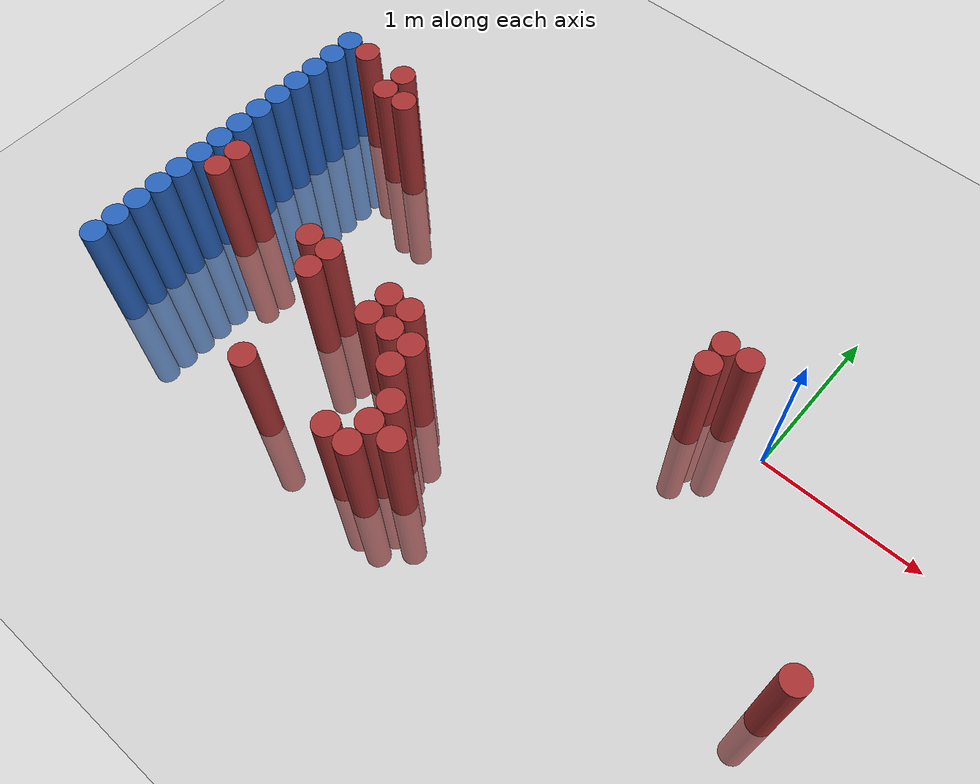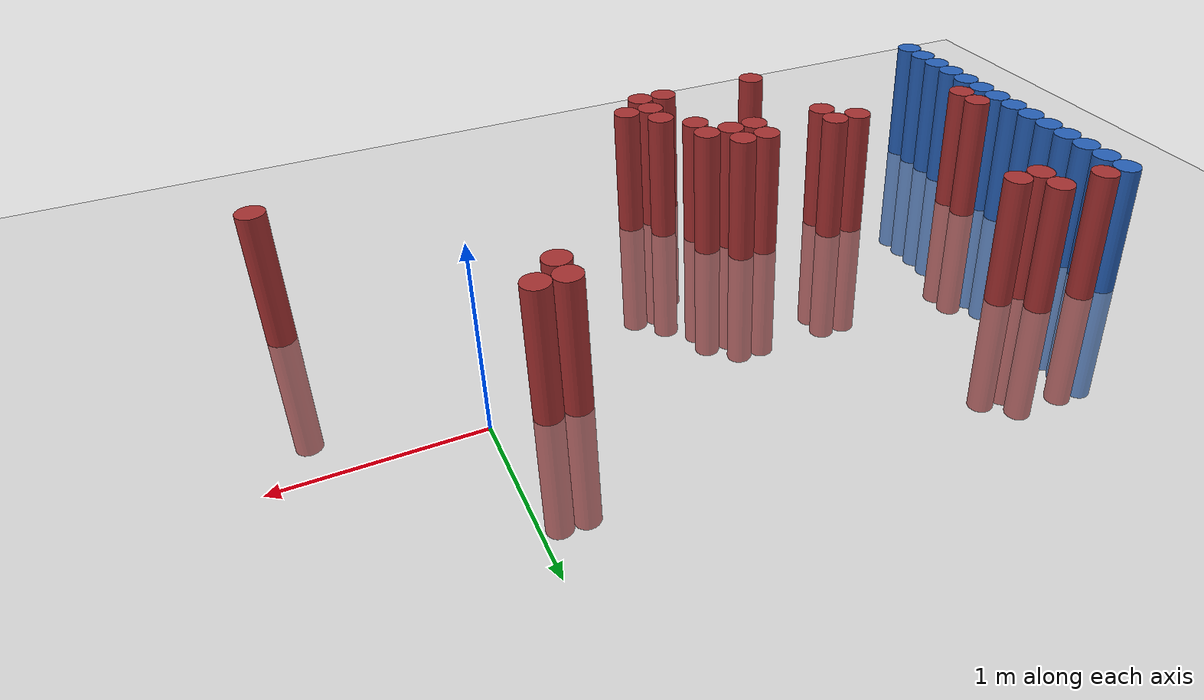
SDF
<sdf version="1.6">
 <world name="default">
  <model name="ground_plane">
   <static>1</static>
   <link name="link">
    <collision name="collision">
     <geometry><plane><normal>0 0 1</normal><size>100 100</size></plane></geometry>
     <surface><friction><ode><mu>100</mu><mu2>50</mu2></ode></friction></surface>
    </collision>
    <visual name="visual">
     <cast_shadows>0</cast_shadows>
     <geometry><plane><normal>0 0 1</normal><size>100 100</size></plane></geometry>
     <material>
      <script><uri>file://media/materials/scripts/gazebo.material</uri><name>Gazebo/Grey</name></script>
     </material>
    </visual>
   </link>
  </model>
  <model name="unit_cylinder_93">
   <static>1</static>
   <pose>-3.425000 -1.625000 0.000000 0.000000 0.000000 0.000000</pose>
   <link name="link">
    <inertial>
     <mass>1</mass>
     <inertia><ixx>0.145833</ixx><ixy>0</ixy><ixz>0</ixz><iyy>0.145833</iyy><iyz>0</iyz><izz>0.125</izz></inertia>
    </inertial>
    <collision name="collision">
     <geometry><cylinder><radius>0.075000</radius><length>1.5</length></cylinder></geometry>
    </collision>
    <visual name="visual">
     <geometry><cylinder><radius>0.075000</radius><length>1.5</length></cylinder></geometry>
     <material>
      <ambient>0.152000 0.379000 0.720000 1</ambient>
      <diffuse>0.152000 0.379000 0.720000 1</diffuse>
     </material>
     <material>
      <script><name>Gazebo/Grey</name><uri>file://media/materials/scripts/gazebo.material</uri></script>
     </material>
    </visual>
   </link>
  </model>
  <model name="unit_cylinder_95">
   <static>1</static>
   <pose>-3.425000 -1.475000 0.000000 0.000000 0.000000 0.000000</pose>
   <link name="link">
    <inertial>
     <mass>1</mass>
     <inertia><ixx>0.145833</ixx><ixy>0</ixy><ixz>0</ixz><iyy>0.145833</iyy><iyz>0</iyz><izz>0.125</izz></inertia>
    </inertial>
    <collision name="collision">
     <geometry><cylinder><radius>0.075000</radius><length>1.5</length></cylinder></geometry>
    </collision>
    <visual name="visual">
     <geometry><cylinder><radius>0.075000</radius><length>1.5</length></cylinder></geometry>
     <material>
      <ambient>0.152000 0.379000 0.720000 1</ambient>
      <diffuse>0.152000 0.379000 0.720000 1</diffuse>
     </material>
     <material>
      <script><name>Gazebo/Grey</name><uri>file://media/materials/scripts/gazebo.material</uri></script>
     </material>
    </visual>
   </link>
  </model>
  <model name="unit_cylinder_97">
   <static>1</static>
   <pose>-3.425000 -1.325000 0.000000 0.000000 0.000000 0.000000</pose>
   <link name="link">
    <inertial>
     <mass>1</mass>
     <inertia><ixx>0.145833</ixx><ixy>0</ixy><ixz>0</ixz><iyy>0.145833</iyy><iyz>0</iyz><izz>0.125</izz></inertia>
    </inertial>
    <collision name="collision">
     <geometry><cylinder><radius>0.075000</radius><length>1.5</length></cylinder></geometry>
    </collision>
    <visual name="visual">
     <geometry><cylinder><radius>0.075000</radius><length>1.5</length></cylinder></geometry>
     <material>
      <ambient>0.152000 0.379000 0.720000 1</ambient>
      <diffuse>0.152000 0.379000 0.720000 1</diffuse>
     </material>
     <material>
      <script><name>Gazebo/Grey</name><uri>file://media/materials/scripts/gazebo.material</uri></script>
     </material>
    </visual>
   </link>
  </model>
  <model name="unit_cylinder_99">
   <static>1</static>
   <pose>-3.425000 -1.175000 0.000000 0.000000 0.000000 0.000000</pose>
   <link name="link">
    <inertial>
     <mass>1</mass>
     <inertia><ixx>0.145833</ixx><ixy>0</ixy><ixz>0</ixz><iyy>0.145833</iyy><iyz>0</iyz><izz>0.125</izz></inertia>
    </inertial>
    <collision name="collision">
     <geometry><cylinder><radius>0.075000</radius><length>1.5</length></cylinder></geometry>
    </collision>
    <visual name="visual">
     <geometry><cylinder><radius>0.075000</radius><length>1.5</length></cylinder></geometry>
     <material>
      <ambient>0.152000 0.379000 0.720000 1</ambient>
      <diffuse>0.152000 0.379000 0.720000 1</diffuse>
     </material>
     <material>
      <script><name>Gazebo/Grey</name><uri>file://media/materials/scripts/gazebo.material</uri></script>
     </material>
    </visual>
   </link>
  </model>
  <model name="unit_cylinder_101">
   <static>1</static>
   <pose>-3.425000 -1.025000 0.000000 0.000000 0.000000 0.000000</pose>
   <link name="link">
    <inertial>
     <mass>1</mass>
     <inertia><ixx>0.145833</ixx><ixy>0</ixy><ixz>0</ixz><iyy>0.145833</iyy><iyz>0</iyz><izz>0.125</izz></inertia>
    </inertial>
    <collision name="collision">
     <geometry><cylinder><radius>0.075000</radius><length>1.5</length></cylinder></geometry>
    </collision>
    <visual name="visual">
     <geometry><cylinder><radius>0.075000</radius><length>1.5</length></cylinder></geometry>
     <material>
      <ambient>0.152000 0.379000 0.720000 1</ambient>
      <diffuse>0.152000 0.379000 0.720000 1</diffuse>
     </material>
     <material>
      <script><name>Gazebo/Grey</name><uri>file://media/materials/scripts/gazebo.material</uri></script>
     </material>
    </visual>
   </link>
  </model>
  <model name="unit_cylinder_103">
   <static>1</static>
   <pose>-3.425000 -0.875000 0.000000 0.000000 0.000000 0.000000</pose>
   <link name="link">
    <inertial>
     <mass>1</mass>
     <inertia><ixx>0.145833</ixx><ixy>0</ixy><ixz>0</ixz><iyy>0.145833</iyy><iyz>0</iyz><izz>0.125</izz></inertia>
    </inertial>
    <collision name="collision">
     <geometry><cylinder><radius>0.075000</radius><length>1.5</length></cylinder></geometry>
    </collision>
    <visual name="visual">
     <geometry><cylinder><radius>0.075000</radius><length>1.5</length></cylinder></geometry>
     <material>
      <ambient>0.152000 0.379000 0.720000 1</ambient>
      <diffuse>0.152000 0.379000 0.720000 1</diffuse>
     </material>
     <material>
      <script><name>Gazebo/Grey</name><uri>file://media/materials/scripts/gazebo.material</uri></script>
     </material>
    </visual>
   </link>
  </model>
  <model name="unit_cylinder_105">
   <static>1</static>
   <pose>-3.425000 -0.725000 0.000000 0.000000 0.000000 0.000000</pose>
   <link name="link">
    <inertial>
     <mass>1</mass>
     <inertia><ixx>0.145833</ixx><ixy>0</ixy><ixz>0</ixz><iyy>0.145833</iyy><iyz>0</iyz><izz>0.125</izz></inertia>
    </inertial>
    <collision name="collision">
     <geometry><cylinder><radius>0.075000</radius><length>1.5</length></cylinder></geometry>
    </collision>
    <visual name="visual">
     <geometry><cylinder><radius>0.075000</radius><length>1.5</length></cylinder></geometry>
     <material>
      <ambient>0.152000 0.379000 0.720000 1</ambient>
      <diffuse>0.152000 0.379000 0.720000 1</diffuse>
     </material>
     <material>
      <script><name>Gazebo/Grey</name><uri>file://media/materials/scripts/gazebo.material</uri></script>
     </material>
    </visual>
   </link>
  </model>
  <model name="unit_cylinder_107">
   <static>1</static>
   <pose>-3.425000 -0.575000 0.000000 0.000000 0.000000 0.000000</pose>
   <link name="link">
    <inertial>
     <mass>1</mass>
     <inertia><ixx>0.145833</ixx><ixy>0</ixy><ixz>0</ixz><iyy>0.145833</iyy><iyz>0</iyz><izz>0.125</izz></inertia>
    </inertial>
    <collision name="collision">
     <geometry><cylinder><radius>0.075000</radius><length>1.5</length></cylinder></geometry>
    </collision>
    <visual name="visual">
     <geometry><cylinder><radius>0.075000</radius><length>1.5</length></cylinder></geometry>
     <material>
      <ambient>0.152000 0.379000 0.720000 1</ambient>
      <diffuse>0.152000 0.379000 0.720000 1</diffuse>
     </material>
     <material>
      <script><name>Gazebo/Grey</name><uri>file://media/materials/scripts/gazebo.material</uri></script>
     </material>
    </visual>
   </link>
  </model>
  <model name="unit_cylinder_109">
   <static>1</static>
   <pose>-3.425000 -0.425000 0.000000 0.000000 0.000000 0.000000</pose>
   <link name="link">
    <inertial>
     <mass>1</mass>
     <inertia><ixx>0.145833</ixx><ixy>0</ixy><ixz>0</ixz><iyy>0.145833</iyy><iyz>0</iyz><izz>0.125</izz></inertia>
    </inertial>
    <collision name="collision">
     <geometry><cylinder><radius>0.075000</radius><length>1.5</length></cylinder></geometry>
    </collision>
    <visual name="visual">
     <geometry><cylinder><radius>0.075000</radius><length>1.5</length></cylinder></geometry>
     <material>
      <ambient>0.152000 0.379000 0.720000 1</ambient>
      <diffuse>0.152000 0.379000 0.720000 1</diffuse>
     </material>
     <material>
      <script><name>Gazebo/Grey</name><uri>file://media/materials/scripts/gazebo.material</uri></script>
     </material>
    </visual>
   </link>
  </model>
  <model name="unit_cylinder_111">
   <static>1</static>
   <pose>-3.425000 -0.275000 0.000000 0.000000 0.000000 0.000000</pose>
   <link name="link">
    <inertial>
     <mass>1</mass>
     <inertia><ixx>0.145833</ixx><ixy>0</ixy><ixz>0</ixz><iyy>0.145833</iyy><iyz>0</iyz><izz>0.125</izz></inertia>
    </inertial>
    <collision name="collision">
     <geometry><cylinder><radius>0.075000</radius><length>1.5</length></cylinder></geometry>
    </collision>
    <visual name="visual">
     <geometry><cylinder><radius>0.075000</radius><length>1.5</length></cylinder></geometry>
     <material>
      <ambient>0.152000 0.379000 0.720000 1</ambient>
      <diffuse>0.152000 0.379000 0.720000 1</diffuse>
     </material>
     <material>
      <script><name>Gazebo/Grey</name><uri>file://media/materials/scripts/gazebo.material</uri></script>
     </material>
    </visual>
   </link>
  </model>
  <model name="unit_cylinder_113">
   <static>1</static>
   <pose>-3.425000 -0.125000 0.000000 0.000000 0.000000 0.000000</pose>
   <link name="link">
    <inertial>
     <mass>1</mass>
     <inertia><ixx>0.145833</ixx><ixy>0</ixy><ixz>0</ixz><iyy>0.145833</iyy><iyz>0</iyz><izz>0.125</izz></inertia>
    </inertial>
    <collision name="collision">
     <geometry><cylinder><radius>0.075000</radius><length>1.5</length></cylinder></geometry>
    </collision>
    <visual name="visual">
     <geometry><cylinder><radius>0.075000</radius><length>1.5</length></cylinder></geometry>
     <material>
      <ambient>0.152000 0.379000 0.720000 1</ambient>
      <diffuse>0.152000 0.379000 0.720000 1</diffuse>
     </material>
     <material>
      <script><name>Gazebo/Grey</name><uri>file://media/materials/scripts/gazebo.material</uri></script>
     </material>
    </visual>
   </link>
  </model>
  <model name="unit_cylinder_115">
   <static>1</static>
   <pose>-3.425000 0.025000 0.000000 0.000000 0.000000 0.000000</pose>
   <link name="link">
    <inertial>
     <mass>1</mass>
     <inertia><ixx>0.145833</ixx><ixy>0</ixy><ixz>0</ixz><iyy>0.145833</iyy><iyz>0</iyz><izz>0.125</izz></inertia>
    </inertial>
    <collision name="collision">
     <geometry><cylinder><radius>0.075000</radius><length>1.5</length></cylinder></geometry>
    </collision>
    <visual name="visual">
     <geometry><cylinder><radius>0.075000</radius><length>1.5</length></cylinder></geometry>
     <material>
      <ambient>0.152000 0.379000 0.720000 1</ambient>
      <diffuse>0.152000 0.379000 0.720000 1</diffuse>
     </material>
     <material>
      <script><name>Gazebo/Grey</name><uri>file://media/materials/scripts/gazebo.material</uri></script>
     </material>
    </visual>
   </link>
  </model>
  <model name="unit_cylinder_117">
   <static>1</static>
   <pose>-3.425000 0.175000 0.000000 0.000000 0.000000 0.000000</pose>
   <link name="link">
    <inertial>
     <mass>1</mass>
     <inertia><ixx>0.145833</ixx><ixy>0</ixy><ixz>0</ixz><iyy>0.145833</iyy><iyz>0</iyz><izz>0.125</izz></inertia>
    </inertial>
    <collision name="collision">
     <geometry><cylinder><radius>0.075000</radius><length>1.5</length></cylinder></geometry>
    </collision>
    <visual name="visual">
     <geometry><cylinder><radius>0.075000</radius><length>1.5</length></cylinder></geometry>
     <material>
      <ambient>0.152000 0.379000 0.720000 1</ambient>
      <diffuse>0.152000 0.379000 0.720000 1</diffuse>
     </material>
     <material>
      <script><name>Gazebo/Grey</name><uri>file://media/materials/scripts/gazebo.material</uri></script>
     </material>
    </visual>
   </link>
  </model>
  <model name="unit_cylinder_119">
   <static>1</static>
   <pose>-3.425000 0.325000 0.000000 0.000000 0.000000 0.000000</pose>
   <link name="link">
    <inertial>
     <mass>1</mass>
     <inertia><ixx>0.145833</ixx><ixy>0</ixy><ixz>0</ixz><iyy>0.145833</iyy><iyz>0</iyz><izz>0.125</izz></inertia>
    </inertial>
    <collision name="collision">
     <geometry><cylinder><radius>0.075000</radius><length>1.5</length></cylinder></geometry>
    </collision>
    <visual name="visual">
     <geometry><cylinder><radius>0.075000</radius><length>1.5</length></cylinder></geometry>
     <material>
      <ambient>0.152000 0.379000 0.720000 1</ambient>
      <diffuse>0.152000 0.379000 0.720000 1</diffuse>
     </material>
     <material>
      <script><name>Gazebo/Grey</name><uri>file://media/materials/scripts/gazebo.material</uri></script>
     </material>
    </visual>
   </link>
  </model>
  <model name="unit_cylinder_210">
   <static>1</static>
   <pose>-3.425000 -1.625000 0.000000 0.000000 0.000000 0.000000</pose>
   <link name="link">
    <inertial>
     <mass>1</mass>
     <inertia><ixx>0.145833</ixx><ixy>0</ixy><ixz>0</ixz><iyy>0.145833</iyy><iyz>0</iyz><izz>0.125</izz></inertia>
    </inertial>
    <collision name="collision">
     <geometry><cylinder><radius>0.075000</radius><length>1.5</length></cylinder></geometry>
    </collision>
    <visual name="visual">
     <geometry><cylinder><radius>0.075000</radius><length>1.5</length></cylinder></geometry>
     <material>
      <ambient>0.152000 0.379000 0.720000 1</ambient>
      <diffuse>0.152000 0.379000 0.720000 1</diffuse>
     </material>
     <material>
      <script><name>Gazebo/Grey</name><uri>file://media/materials/scripts/gazebo.material</uri></script>
     </material>
    </visual>
   </link>
  </model>
  <model name="unit_cylinder_211">
   <static>1</static>
   <pose>-3.425000 -1.475000 0.000000 0.000000 0.000000 0.000000</pose>
   <link name="link">
    <inertial>
     <mass>1</mass>
     <inertia><ixx>0.145833</ixx><ixy>0</ixy><ixz>0</ixz><iyy>0.145833</iyy><iyz>0</iyz><izz>0.125</izz></inertia>
    </inertial>
    <collision name="collision">
     <geometry><cylinder><radius>0.075000</radius><length>1.5</length></cylinder></geometry>
    </collision>
    <visual name="visual">
     <geometry><cylinder><radius>0.075000</radius><length>1.5</length></cylinder></geometry>
     <material>
      <ambient>0.152000 0.379000 0.720000 1</ambient>
      <diffuse>0.152000 0.379000 0.720000 1</diffuse>
     </material>
     <material>
      <script><name>Gazebo/Grey</name><uri>file://media/materials/scripts/gazebo.material</uri></script>
     </material>
    </visual>
   </link>
  </model>
  <model name="unit_cylinder_212">
   <static>1</static>
   <pose>-3.425000 -1.325000 0.000000 0.000000 0.000000 0.000000</pose>
   <link name="link">
    <inertial>
     <mass>1</mass>
     <inertia><ixx>0.145833</ixx><ixy>0</ixy><ixz>0</ixz><iyy>0.145833</iyy><iyz>0</iyz><izz>0.125</izz></inertia>
    </inertial>
    <collision name="collision">
     <geometry><cylinder><radius>0.075000</radius><length>1.5</length></cylinder></geometry>
    </collision>
    <visual name="visual">
     <geometry><cylinder><radius>0.075000</radius><length>1.5</length></cylinder></geometry>
     <material>
      <ambient>0.152000 0.379000 0.720000 1</ambient>
      <diffuse>0.152000 0.379000 0.720000 1</diffuse>
     </material>
     <material>
      <script><name>Gazebo/Grey</name><uri>file://media/materials/scripts/gazebo.material</uri></script>
     </material>
    </visual>
   </link>
  </model>
  <model name="unit_cylinder_213">
   <static>1</static>
   <pose>-3.425000 -1.175000 0.000000 0.000000 0.000000 0.000000</pose>
   <link name="link">
    <inertial>
     <mass>1</mass>
     <inertia><ixx>0.145833</ixx><ixy>0</ixy><ixz>0</ixz><iyy>0.145833</iyy><iyz>0</iyz><izz>0.125</izz></inertia>
    </inertial>
    <collision name="collision">
     <geometry><cylinder><radius>0.075000</radius><length>1.5</length></cylinder></geometry>
    </collision>
    <visual name="visual">
     <geometry><cylinder><radius>0.075000</radius><length>1.5</length></cylinder></geometry>
     <material>
      <ambient>0.152000 0.379000 0.720000 1</ambient>
      <diffuse>0.152000 0.379000 0.720000 1</diffuse>
     </material>
     <material>
      <script><name>Gazebo/Grey</name><uri>file://media/materials/scripts/gazebo.material</uri></script>
     </material>
    </visual>
   </link>
  </model>
  <model name="unit_cylinder_214">
   <static>1</static>
   <pose>-3.425000 -1.025000 0.000000 0.000000 0.000000 0.000000</pose>
   <link name="link">
    <inertial>
     <mass>1</mass>
     <inertia><ixx>0.145833</ixx><ixy>0</ixy><ixz>0</ixz><iyy>0.145833</iyy><iyz>0</iyz><izz>0.125</izz></inertia>
    </inertial>
    <collision name="collision">
     <geometry><cylinder><radius>0.075000</radius><length>1.5</length></cylinder></geometry>
    </collision>
    <visual name="visual">
     <geometry><cylinder><radius>0.075000</radius><length>1.5</length></cylinder></geometry>
     <material>
      <ambient>0.152000 0.379000 0.720000 1</ambient>
      <diffuse>0.152000 0.379000 0.720000 1</diffuse>
     </material>
     <material>
      <script><name>Gazebo/Grey</name><uri>file://media/materials/scripts/gazebo.material</uri></script>
     </material>
    </visual>
   </link>
  </model>
  <model name="unit_cylinder_215">
   <static>1</static>
   <pose>-3.425000 -0.875000 0.000000 0.000000 0.000000 0.000000</pose>
   <link name="link">
    <inertial>
     <mass>1</mass>
     <inertia><ixx>0.145833</ixx><ixy>0</ixy><ixz>0</ixz><iyy>0.145833</iyy><iyz>0</iyz><izz>0.125</izz></inertia>
    </inertial>
    <collision name="collision">
     <geometry><cylinder><radius>0.075000</radius><length>1.5</length></cylinder></geometry>
    </collision>
    <visual name="visual">
     <geometry><cylinder><radius>0.075000</radius><length>1.5</length></cylinder></geometry>
     <material>
      <ambient>0.152000 0.379000 0.720000 1</ambient>
      <diffuse>0.152000 0.379000 0.720000 1</diffuse>
     </material>
     <material>
      <script><name>Gazebo/Grey</name><uri>file://media/materials/scripts/gazebo.material</uri></script>
     </material>
    </visual>
   </link>
  </model>
  <model name="unit_cylinder_216">
   <static>1</static>
   <pose>-3.425000 -0.725000 0.000000 0.000000 0.000000 0.000000</pose>
   <link name="link">
    <inertial>
     <mass>1</mass>
     <inertia><ixx>0.145833</ixx><ixy>0</ixy><ixz>0</ixz><iyy>0.145833</iyy><iyz>0</iyz><izz>0.125</izz></inertia>
    </inertial>
    <collision name="collision">
     <geometry><cylinder><radius>0.075000</radius><length>1.5</length></cylinder></geometry>
    </collision>
    <visual name="visual">
     <geometry><cylinder><radius>0.075000</radius><length>1.5</length></cylinder></geometry>
     <material>
      <ambient>0.152000 0.379000 0.720000 1</ambient>
      <diffuse>0.152000 0.379000 0.720000 1</diffuse>
     </material>
     <material>
      <script><name>Gazebo/Grey</name><uri>file://media/materials/scripts/gazebo.material</uri></script>
     </material>
    </visual>
   </link>
  </model>
  <model name="unit_cylinder_217">
   <static>1</static>
   <pose>-3.425000 -0.575000 0.000000 0.000000 0.000000 0.000000</pose>
   <link name="link">
    <inertial>
     <mass>1</mass>
     <inertia><ixx>0.145833</ixx><ixy>0</ixy><ixz>0</ixz><iyy>0.145833</iyy><iyz>0</iyz><izz>0.125</izz></inertia>
    </inertial>
    <collision name="collision">
     <geometry><cylinder><radius>0.075000</radius><length>1.5</length></cylinder></geometry>
    </collision>
    <visual name="visual">
     <geometry><cylinder><radius>0.075000</radius><length>1.5</length></cylinder></geometry>
     <material>
      <ambient>0.152000 0.379000 0.720000 1</ambient>
      <diffuse>0.152000 0.379000 0.720000 1</diffuse>
     </material>
     <material>
      <script><name>Gazebo/Grey</name><uri>file://media/materials/scripts/gazebo.material</uri></script>
     </material>
    </visual>
   </link>
  </model>
  <model name="unit_cylinder_218">
   <static>1</static>
   <pose>-3.425000 -0.425000 0.000000 0.000000 0.000000 0.000000</pose>
   <link name="link">
    <inertial>
     <mass>1</mass>
     <inertia><ixx>0.145833</ixx><ixy>0</ixy><ixz>0</ixz><iyy>0.145833</iyy><iyz>0</iyz><izz>0.125</izz></inertia>
    </inertial>
    <collision name="collision">
     <geometry><cylinder><radius>0.075000</radius><length>1.5</length></cylinder></geometry>
    </collision>
    <visual name="visual">
     <geometry><cylinder><radius>0.075000</radius><length>1.5</length></cylinder></geometry>
     <material>
      <ambient>0.152000 0.379000 0.720000 1</ambient>
      <diffuse>0.152000 0.379000 0.720000 1</diffuse>
     </material>
     <material>
      <script><name>Gazebo/Grey</name><uri>file://media/materials/scripts/gazebo.material</uri></script>
     </material>
    </visual>
   </link>
  </model>
  <model name="unit_cylinder_219">
   <static>1</static>
   <pose>-3.425000 -0.275000 0.000000 0.000000 0.000000 0.000000</pose>
   <link name="link">
    <inertial>
     <mass>1</mass>
     <inertia><ixx>0.145833</ixx><ixy>0</ixy><ixz>0</ixz><iyy>0.145833</iyy><iyz>0</iyz><izz>0.125</izz></inertia>
    </inertial>
    <collision name="collision">
     <geometry><cylinder><radius>0.075000</radius><length>1.5</length></cylinder></geometry>
    </collision>
    <visual name="visual">
     <geometry><cylinder><radius>0.075000</radius><length>1.5</length></cylinder></geometry>
     <material>
      <ambient>0.152000 0.379000 0.720000 1</ambient>
      <diffuse>0.152000 0.379000 0.720000 1</diffuse>
     </material>
     <material>
      <script><name>Gazebo/Grey</name><uri>file://media/materials/scripts/gazebo.material</uri></script>
     </material>
    </visual>
   </link>
  </model>
  <model name="unit_cylinder_220">
   <static>1</static>
   <pose>-3.425000 -0.125000 0.000000 0.000000 0.000000 0.000000</pose>
   <link name="link">
    <inertial>
     <mass>1</mass>
     <inertia><ixx>0.145833</ixx><ixy>0</ixy><ixz>0</ixz><iyy>0.145833</iyy><iyz>0</iyz><izz>0.125</izz></inertia>
    </inertial>
    <collision name="collision">
     <geometry><cylinder><radius>0.075000</radius><length>1.5</length></cylinder></geometry>
    </collision>
    <visual name="visual">
     <geometry><cylinder><radius>0.075000</radius><length>1.5</length></cylinder></geometry>
     <material>
      <ambient>0.152000 0.379000 0.720000 1</ambient>
      <diffuse>0.152000 0.379000 0.720000 1</diffuse>
     </material>
     <material>
      <script><name>Gazebo/Grey</name><uri>file://media/materials/scripts/gazebo.material</uri></script>
     </material>
    </visual>
   </link>
  </model>
  <model name="unit_cylinder_221">
   <static>1</static>
   <pose>-3.425000 0.025000 0.000000 0.000000 0.000000 0.000000</pose>
   <link name="link">
    <inertial>
     <mass>1</mass>
     <inertia><ixx>0.145833</ixx><ixy>0</ixy><ixz>0</ixz><iyy>0.145833</iyy><iyz>0</iyz><izz>0.125</izz></inertia>
    </inertial>
    <collision name="collision">
     <geometry><cylinder><radius>0.075000</radius><length>1.5</length></cylinder></geometry>
    </collision>
    <visual name="visual">
     <geometry><cylinder><radius>0.075000</radius><length>1.5</length></cylinder></geometry>
     <material>
      <ambient>0.152000 0.379000 0.720000 1</ambient>
      <diffuse>0.152000 0.379000 0.720000 1</diffuse>
     </material>
     <material>
      <script><name>Gazebo/Grey</name><uri>file://media/materials/scripts/gazebo.material</uri></script>
     </material>
    </visual>
   </link>
  </model>
  <model name="unit_cylinder_222">
   <static>1</static>
   <pose>-3.425000 0.175000 0.000000 0.000000 0.000000 0.000000</pose>
   <link name="link">
    <inertial>
     <mass>1</mass>
     <inertia><ixx>0.145833</ixx><ixy>0</ixy><ixz>0</ixz><iyy>0.145833</iyy><iyz>0</iyz><izz>0.125</izz></inertia>
    </inertial>
    <collision name="collision">
     <geometry><cylinder><radius>0.075000</radius><length>1.5</length></cylinder></geometry>
    </collision>
    <visual name="visual">
     <geometry><cylinder><radius>0.075000</radius><length>1.5</length></cylinder></geometry>
     <material>
      <ambient>0.152000 0.379000 0.720000 1</ambient>
      <diffuse>0.152000 0.379000 0.720000 1</diffuse>
     </material>
     <material>
      <script><name>Gazebo/Grey</name><uri>file://media/materials/scripts/gazebo.material</uri></script>
     </material>
    </visual>
   </link>
  </model>
  <model name="unit_cylinder_223">
   <static>1</static>
   <pose>-3.425000 0.325000 0.000000 0.000000 0.000000 0.000000</pose>
   <link name="link">
    <inertial>
     <mass>1</mass>
     <inertia><ixx>0.145833</ixx><ixy>0</ixy><ixz>0</ixz><iyy>0.145833</iyy><iyz>0</iyz><izz>0.125</izz></inertia>
    </inertial>
    <collision name="collision">
     <geometry><cylinder><radius>0.075000</radius><length>1.5</length></cylinder></geometry>
    </collision>
    <visual name="visual">
     <geometry><cylinder><radius>0.075000</radius><length>1.5</length></cylinder></geometry>
     <material>
      <ambient>0.152000 0.379000 0.720000 1</ambient>
      <diffuse>0.152000 0.379000 0.720000 1</diffuse>
     </material>
     <material>
      <script><name>Gazebo/Grey</name><uri>file://media/materials/scripts/gazebo.material</uri></script>
     </material>
    </visual>
   </link>
  </model>
  <model name="unit_cylinder_258">
   <static>1</static>
   <pose>-3.275000 -0.875000 0.000000 0.000000 0.000000 0.000000</pose>
   <link name="link">
    <inertial>
     <mass>1</mass>
     <inertia><ixx>0.145833</ixx><ixy>0</ixy><ixz>0</ixz><iyy>0.145833</iyy><iyz>0</iyz><izz>0.125</izz></inertia>
    </inertial>
    <collision name="collision">
     <geometry><cylinder><radius>0.075000</radius><length>1.5</length></cylinder></geometry>
    </collision>
    <visual name="visual">
     <geometry><cylinder><radius>0.075000</radius><length>1.5</length></cylinder></geometry>
     <material>
      <ambient>0.648000 0.192000 0.192000 1</ambient>
      <diffuse>0.648000 0.192000 0.192000 1</diffuse>
     </material>
     <material>
      <script><name>Gazebo/Grey</name><uri>file://media/materials/scripts/gazebo.material</uri></script>
     </material>
    </visual>
   </link>
  </model>
  <model name="unit_cylinder_259">
   <static>1</static>
   <pose>-3.275000 -0.725000 0.000000 0.000000 0.000000 0.000000</pose>
   <link name="link">
    <inertial>
     <mass>1</mass>
     <inertia><ixx>0.145833</ixx><ixy>0</ixy><ixz>0</ixz><iyy>0.145833</iyy><iyz>0</iyz><izz>0.125</izz></inertia>
    </inertial>
    <collision name="collision">
     <geometry><cylinder><radius>0.075000</radius><length>1.5</length></cylinder></geometry>
    </collision>
    <visual name="visual">
     <geometry><cylinder><radius>0.075000</radius><length>1.5</length></cylinder></geometry>
     <material>
      <ambient>0.648000 0.192000 0.192000 1</ambient>
      <diffuse>0.648000 0.192000 0.192000 1</diffuse>
     </material>
     <material>
      <script><name>Gazebo/Grey</name><uri>file://media/materials/scripts/gazebo.material</uri></script>
     </material>
    </visual>
   </link>
  </model>
  <model name="unit_cylinder_260">
   <static>1</static>
   <pose>-3.275000 0.325000 0.000000 0.000000 0.000000 0.000000</pose>
   <link name="link">
    <inertial>
     <mass>1</mass>
     <inertia><ixx>0.145833</ixx><ixy>0</ixy><ixz>0</ixz><iyy>0.145833</iyy><iyz>0</iyz><izz>0.125</izz></inertia>
    </inertial>
    <collision name="collision">
     <geometry><cylinder><radius>0.075000</radius><length>1.5</length></cylinder></geometry>
    </collision>
    <visual name="visual">
     <geometry><cylinder><radius>0.075000</radius><length>1.5</length></cylinder></geometry>
     <material>
      <ambient>0.648000 0.192000 0.192000 1</ambient>
      <diffuse>0.648000 0.192000 0.192000 1</diffuse>
     </material>
     <material>
      <script><name>Gazebo/Grey</name><uri>file://media/materials/scripts/gazebo.material</uri></script>
     </material>
    </visual>
   </link>
  </model>
  <model name="unit_cylinder_278">
   <static>1</static>
   <pose>-2.975000 0.175000 0.000000 0.000000 0.000000 0.000000</pose>
   <link name="link">
    <inertial>
     <mass>1</mass>
     <inertia><ixx>0.145833</ixx><ixy>0</ixy><ixz>0</ixz><iyy>0.145833</iyy><iyz>0</iyz><izz>0.125</izz></inertia>
    </inertial>
    <collision name="collision">
     <geometry><cylinder><radius>0.075000</radius><length>1.5</length></cylinder></geometry>
    </collision>
    <visual name="visual">
     <geometry><cylinder><radius>0.075000</radius><length>1.5</length></cylinder></geometry>
     <material>
      <ambient>0.648000 0.192000 0.192000 1</ambient>
      <diffuse>0.648000 0.192000 0.192000 1</diffuse>
     </material>
     <material>
      <script><name>Gazebo/Grey</name><uri>file://media/materials/scripts/gazebo.material</uri></script>
     </material>
    </visual>
   </link>
  </model>
  <model name="unit_cylinder_279">
   <static>1</static>
   <pose>-2.975000 0.325000 0.000000 0.000000 0.000000 0.000000</pose>
   <link name="link">
    <inertial>
     <mass>1</mass>
     <inertia><ixx>0.145833</ixx><ixy>0</ixy><ixz>0</ixz><iyy>0.145833</iyy><iyz>0</iyz><izz>0.125</izz></inertia>
    </inertial>
    <collision name="collision">
     <geometry><cylinder><radius>0.075000</radius><length>1.5</length></cylinder></geometry>
    </collision>
    <visual name="visual">
     <geometry><cylinder><radius>0.075000</radius><length>1.5</length></cylinder></geometry>
     <material>
      <ambient>0.648000 0.192000 0.192000 1</ambient>
      <diffuse>0.648000 0.192000 0.192000 1</diffuse>
     </material>
     <material>
      <script><name>Gazebo/Grey</name><uri>file://media/materials/scripts/gazebo.material</uri></script>
     </material>
    </visual>
   </link>
  </model>
  <model name="unit_cylinder_280">
   <static>1</static>
   <pose>-2.825000 0.175000 0.000000 0.000000 0.000000 0.000000</pose>
   <link name="link">
    <inertial>
     <mass>1</mass>
     <inertia><ixx>0.145833</ixx><ixy>0</ixy><ixz>0</ixz><iyy>0.145833</iyy><iyz>0</iyz><izz>0.125</izz></inertia>
    </inertial>
    <collision name="collision">
     <geometry><cylinder><radius>0.075000</radius><length>1.5</length></cylinder></geometry>
    </collision>
    <visual name="visual">
     <geometry><cylinder><radius>0.075000</radius><length>1.5</length></cylinder></geometry>
     <material>
      <ambient>0.648000 0.192000 0.192000 1</ambient>
      <diffuse>0.648000 0.192000 0.192000 1</diffuse>
     </material>
     <material>
      <script><name>Gazebo/Grey</name><uri>file://media/materials/scripts/gazebo.material</uri></script>
     </material>
    </visual>
   </link>
  </model>
  <model name="unit_cylinder_281">
   <static>1</static>
   <pose>-2.525000 -0.875000 0.000000 0.000000 0.000000 0.000000</pose>
   <link name="link">
    <inertial>
     <mass>1</mass>
     <inertia><ixx>0.145833</ixx><ixy>0</ixy><ixz>0</ixz><iyy>0.145833</iyy><iyz>0</iyz><izz>0.125</izz></inertia>
    </inertial>
    <collision name="collision">
     <geometry><cylinder><radius>0.075000</radius><length>1.5</length></cylinder></geometry>
    </collision>
    <visual name="visual">
     <geometry><cylinder><radius>0.075000</radius><length>1.5</length></cylinder></geometry>
     <material>
      <ambient>0.648000 0.192000 0.192000 1</ambient>
      <diffuse>0.648000 0.192000 0.192000 1</diffuse>
     </material>
     <material>
      <script><name>Gazebo/Grey</name><uri>file://media/materials/scripts/gazebo.material</uri></script>
     </material>
    </visual>
   </link>
  </model>
  <model name="unit_cylinder_282">
   <static>1</static>
   <pose>-2.375000 -1.025000 0.000000 0.000000 0.000000 0.000000</pose>
   <link name="link">
    <inertial>
     <mass>1</mass>
     <inertia><ixx>0.145833</ixx><ixy>0</ixy><ixz>0</ixz><iyy>0.145833</iyy><iyz>0</iyz><izz>0.125</izz></inertia>
    </inertial>
    <collision name="collision">
     <geometry><cylinder><radius>0.075000</radius><length>1.5</length></cylinder></geometry>
    </collision>
    <visual name="visual">
     <geometry><cylinder><radius>0.075000</radius><length>1.5</length></cylinder></geometry>
     <material>
      <ambient>0.648000 0.192000 0.192000 1</ambient>
      <diffuse>0.648000 0.192000 0.192000 1</diffuse>
     </material>
     <material>
      <script><name>Gazebo/Grey</name><uri>file://media/materials/scripts/gazebo.material</uri></script>
     </material>
    </visual>
   </link>
  </model>
  <model name="unit_cylinder_283">
   <static>1</static>
   <pose>-2.375000 -0.875000 0.000000 0.000000 0.000000 0.000000</pose>
   <link name="link">
    <inertial>
     <mass>1</mass>
     <inertia><ixx>0.145833</ixx><ixy>0</ixy><ixz>0</ixz><iyy>0.145833</iyy><iyz>0</iyz><izz>0.125</izz></inertia>
    </inertial>
    <collision name="collision">
     <geometry><cylinder><radius>0.075000</radius><length>1.5</length></cylinder></geometry>
    </collision>
    <visual name="visual">
     <geometry><cylinder><radius>0.075000</radius><length>1.5</length></cylinder></geometry>
     <material>
      <ambient>0.648000 0.192000 0.192000 1</ambient>
      <diffuse>0.648000 0.192000 0.192000 1</diffuse>
     </material>
     <material>
      <script><name>Gazebo/Grey</name><uri>file://media/materials/scripts/gazebo.material</uri></script>
     </material>
    </visual>
   </link>
  </model>
  <model name="unit_cylinder_284">
   <static>1</static>
   <pose>-2.225000 -1.625000 0.000000 0.000000 0.000000 0.000000</pose>
   <link name="link">
    <inertial>
     <mass>1</mass>
     <inertia><ixx>0.145833</ixx><ixy>0</ixy><ixz>0</ixz><iyy>0.145833</iyy><iyz>0</iyz><izz>0.125</izz></inertia>
    </inertial>
    <collision name="collision">
     <geometry><cylinder><radius>0.075000</radius><length>1.5</length></cylinder></geometry>
    </collision>
    <visual name="visual">
     <geometry><cylinder><radius>0.075000</radius><length>1.5</length></cylinder></geometry>
     <material>
      <ambient>0.648000 0.192000 0.192000 1</ambient>
      <diffuse>0.648000 0.192000 0.192000 1</diffuse>
     </material>
     <material>
      <script><name>Gazebo/Grey</name><uri>file://media/materials/scripts/gazebo.material</uri></script>
     </material>
    </visual>
   </link>
  </model>
  <model name="unit_cylinder_285">
   <static>1</static>
   <pose>-1.925000 -1.025000 0.000000 0.000000 0.000000 0.000000</pose>
   <link name="link">
    <inertial>
     <mass>1</mass>
     <inertia><ixx>0.145833</ixx><ixy>0</ixy><ixz>0</ixz><iyy>0.145833</iyy><iyz>0</iyz><izz>0.125</izz></inertia>
    </inertial>
    <collision name="collision">
     <geometry><cylinder><radius>0.075000</radius><length>1.5</length></cylinder></geometry>
    </collision>
    <visual name="visual">
     <geometry><cylinder><radius>0.075000</radius><length>1.5</length></cylinder></geometry>
     <material>
      <ambient>0.648000 0.192000 0.192000 1</ambient>
      <diffuse>0.648000 0.192000 0.192000 1</diffuse>
     </material>
     <material>
      <script><name>Gazebo/Grey</name><uri>file://media/materials/scripts/gazebo.material</uri></script>
     </material>
    </visual>
   </link>
  </model>
  <model name="unit_cylinder_286">
   <static>1</static>
   <pose>-1.925000 -0.875000 0.000000 0.000000 0.000000 0.000000</pose>
   <link name="link">
    <inertial>
     <mass>1</mass>
     <inertia><ixx>0.145833</ixx><ixy>0</ixy><ixz>0</ixz><iyy>0.145833</iyy><iyz>0</iyz><izz>0.125</izz></inertia>
    </inertial>
    <collision name="collision">
     <geometry><cylinder><radius>0.075000</radius><length>1.5</length></cylinder></geometry>
    </collision>
    <visual name="visual">
     <geometry><cylinder><radius>0.075000</radius><length>1.5</length></cylinder></geometry>
     <material>
      <ambient>0.648000 0.192000 0.192000 1</ambient>
      <diffuse>0.648000 0.192000 0.192000 1</diffuse>
     </material>
     <material>
      <script><name>Gazebo/Grey</name><uri>file://media/materials/scripts/gazebo.material</uri></script>
     </material>
    </visual>
   </link>
  </model>
  <model name="unit_cylinder_287">
   <static>1</static>
   <pose>-1.775000 -1.025000 0.000000 0.000000 0.000000 0.000000</pose>
   <link name="link">
    <inertial>
     <mass>1</mass>
     <inertia><ixx>0.145833</ixx><ixy>0</ixy><ixz>0</ixz><iyy>0.145833</iyy><iyz>0</iyz><izz>0.125</izz></inertia>
    </inertial>
    <collision name="collision">
     <geometry><cylinder><radius>0.075000</radius><length>1.5</length></cylinder></geometry>
    </collision>
    <visual name="visual">
     <geometry><cylinder><radius>0.075000</radius><length>1.5</length></cylinder></geometry>
     <material>
      <ambient>0.648000 0.192000 0.192000 1</ambient>
      <diffuse>0.648000 0.192000 0.192000 1</diffuse>
     </material>
     <material>
      <script><name>Gazebo/Grey</name><uri>file://media/materials/scripts/gazebo.material</uri></script>
     </material>
    </visual>
   </link>
  </model>
  <model name="unit_cylinder_288">
   <static>1</static>
   <pose>-1.775000 -0.875000 0.000000 0.000000 0.000000 0.000000</pose>
   <link name="link">
    <inertial>
     <mass>1</mass>
     <inertia><ixx>0.145833</ixx><ixy>0</ixy><ixz>0</ixz><iyy>0.145833</iyy><iyz>0</iyz><izz>0.125</izz></inertia>
    </inertial>
    <collision name="collision">
     <geometry><cylinder><radius>0.075000</radius><length>1.5</length></cylinder></geometry>
    </collision>
    <visual name="visual">
     <geometry><cylinder><radius>0.075000</radius><length>1.5</length></cylinder></geometry>
     <material>
      <ambient>0.648000 0.192000 0.192000 1</ambient>
      <diffuse>0.648000 0.192000 0.192000 1</diffuse>
     </material>
     <material>
      <script><name>Gazebo/Grey</name><uri>file://media/materials/scripts/gazebo.material</uri></script>
     </material>
    </visual>
   </link>
  </model>
  <model name="unit_cylinder_291">
   <static>1</static>
   <pose>-1.625000 -1.625000 0.000000 0.000000 0.000000 0.000000</pose>
   <link name="link">
    <inertial>
     <mass>1</mass>
     <inertia><ixx>0.145833</ixx><ixy>0</ixy><ixz>0</ixz><iyy>0.145833</iyy><iyz>0</iyz><izz>0.125</izz></inertia>
    </inertial>
    <collision name="collision">
     <geometry><cylinder><radius>0.075000</radius><length>1.5</length></cylinder></geometry>
    </collision>
    <visual name="visual">
     <geometry><cylinder><radius>0.075000</radius><length>1.5</length></cylinder></geometry>
     <material>
      <ambient>0.648000 0.192000 0.192000 1</ambient>
      <diffuse>0.648000 0.192000 0.192000 1</diffuse>
     </material>
     <material>
      <script><name>Gazebo/Grey</name><uri>file://media/materials/scripts/gazebo.material</uri></script>
     </material>
    </visual>
   </link>
  </model>
  <model name="unit_cylinder_292">
   <static>1</static>
   <pose>-1.625000 -1.175000 0.000000 0.000000 0.000000 0.000000</pose>
   <link name="link">
    <inertial>
     <mass>1</mass>
     <inertia><ixx>0.145833</ixx><ixy>0</ixy><ixz>0</ixz><iyy>0.145833</iyy><iyz>0</iyz><izz>0.125</izz></inertia>
    </inertial>
    <collision name="collision">
     <geometry><cylinder><radius>0.075000</radius><length>1.5</length></cylinder></geometry>
    </collision>
    <visual name="visual">
     <geometry><cylinder><radius>0.075000</radius><length>1.5</length></cylinder></geometry>
     <material>
      <ambient>0.648000 0.192000 0.192000 1</ambient>
      <diffuse>0.648000 0.192000 0.192000 1</diffuse>
     </material>
     <material>
      <script><name>Gazebo/Grey</name><uri>file://media/materials/scripts/gazebo.material</uri></script>
     </material>
    </visual>
   </link>
  </model>
  <model name="unit_cylinder_293">
   <static>1</static>
   <pose>-1.625000 -1.025000 0.000000 0.000000 0.000000 0.000000</pose>
   <link name="link">
    <inertial>
     <mass>1</mass>
     <inertia><ixx>0.145833</ixx><ixy>0</ixy><ixz>0</ixz><iyy>0.145833</iyy><iyz>0</iyz><izz>0.125</izz></inertia>
    </inertial>
    <collision name="collision">
     <geometry><cylinder><radius>0.075000</radius><length>1.5</length></cylinder></geometry>
    </collision>
    <visual name="visual">
     <geometry><cylinder><radius>0.075000</radius><length>1.5</length></cylinder></geometry>
     <material>
      <ambient>0.648000 0.192000 0.192000 1</ambient>
      <diffuse>0.648000 0.192000 0.192000 1</diffuse>
     </material>
     <material>
      <script><name>Gazebo/Grey</name><uri>file://media/materials/scripts/gazebo.material</uri></script>
     </material>
    </visual>
   </link>
  </model>
  <model name="unit_cylinder_298">
   <static>1</static>
   <pose>-1.475000 -1.625000 0.000000 0.000000 0.000000 0.000000</pose>
   <link name="link">
    <inertial>
     <mass>1</mass>
     <inertia><ixx>0.145833</ixx><ixy>0</ixy><ixz>0</ixz><iyy>0.145833</iyy><iyz>0</iyz><izz>0.125</izz></inertia>
    </inertial>
    <collision name="collision">
     <geometry><cylinder><radius>0.075000</radius><length>1.5</length></cylinder></geometry>
    </collision>
    <visual name="visual">
     <geometry><cylinder><radius>0.075000</radius><length>1.5</length></cylinder></geometry>
     <material>
      <ambient>0.648000 0.192000 0.192000 1</ambient>
      <diffuse>0.648000 0.192000 0.192000 1</diffuse>
     </material>
     <material>
      <script><name>Gazebo/Grey</name><uri>file://media/materials/scripts/gazebo.material</uri></script>
     </material>
    </visual>
   </link>
  </model>
  <model name="unit_cylinder_299">
   <static>1</static>
   <pose>-1.475000 -1.475000 0.000000 0.000000 0.000000 0.000000</pose>
   <link name="link">
    <inertial>
     <mass>1</mass>
     <inertia><ixx>0.145833</ixx><ixy>0</ixy><ixz>0</ixz><iyy>0.145833</iyy><iyz>0</iyz><izz>0.125</izz></inertia>
    </inertial>
    <collision name="collision">
     <geometry><cylinder><radius>0.075000</radius><length>1.5</length></cylinder></geometry>
    </collision>
    <visual name="visual">
     <geometry><cylinder><radius>0.075000</radius><length>1.5</length></cylinder></geometry>
     <material>
      <ambient>0.648000 0.192000 0.192000 1</ambient>
      <diffuse>0.648000 0.192000 0.192000 1</diffuse>
     </material>
     <material>
      <script><name>Gazebo/Grey</name><uri>file://media/materials/scripts/gazebo.material</uri></script>
     </material>
    </visual>
   </link>
  </model>
  <model name="unit_cylinder_300">
   <static>1</static>
   <pose>-1.475000 -1.325000 0.000000 0.000000 0.000000 0.000000</pose>
   <link name="link">
    <inertial>
     <mass>1</mass>
     <inertia><ixx>0.145833</ixx><ixy>0</ixy><ixz>0</ixz><iyy>0.145833</iyy><iyz>0</iyz><izz>0.125</izz></inertia>
    </inertial>
    <collision name="collision">
     <geometry><cylinder><radius>0.075000</radius><length>1.5</length></cylinder></geometry>
    </collision>
    <visual name="visual">
     <geometry><cylinder><radius>0.075000</radius><length>1.5</length></cylinder></geometry>
     <material>
      <ambient>0.648000 0.192000 0.192000 1</ambient>
      <diffuse>0.648000 0.192000 0.192000 1</diffuse>
     </material>
     <material>
      <script><name>Gazebo/Grey</name><uri>file://media/materials/scripts/gazebo.material</uri></script>
     </material>
    </visual>
   </link>
  </model>
  <model name="unit_cylinder_303">
   <static>1</static>
   <pose>-1.325000 -1.475000 0.000000 0.000000 0.000000 0.000000</pose>
   <link name="link">
    <inertial>
     <mass>1</mass>
     <inertia><ixx>0.145833</ixx><ixy>0</ixy><ixz>0</ixz><iyy>0.145833</iyy><iyz>0</iyz><izz>0.125</izz></inertia>
    </inertial>
    <collision name="collision">
     <geometry><cylinder><radius>0.075000</radius><length>1.5</length></cylinder></geometry>
    </collision>
    <visual name="visual">
     <geometry><cylinder><radius>0.075000</radius><length>1.5</length></cylinder></geometry>
     <material>
      <ambient>0.648000 0.192000 0.192000 1</ambient>
      <diffuse>0.648000 0.192000 0.192000 1</diffuse>
     </material>
     <material>
      <script><name>Gazebo/Grey</name><uri>file://media/materials/scripts/gazebo.material</uri></script>
     </material>
    </visual>
   </link>
  </model>
  <model name="unit_cylinder_313">
   <static>1</static>
   <pose>-0.425000 -0.125000 0.000000 0.000000 0.000000 0.000000</pose>
   <link name="link">
    <inertial>
     <mass>1</mass>
     <inertia><ixx>0.145833</ixx><ixy>0</ixy><ixz>0</ixz><iyy>0.145833</iyy><iyz>0</iyz><izz>0.125</izz></inertia>
    </inertial>
    <collision name="collision">
     <geometry><cylinder><radius>0.075000</radius><length>1.5</length></cylinder></geometry>
    </collision>
    <visual name="visual">
     <geometry><cylinder><radius>0.075000</radius><length>1.5</length></cylinder></geometry>
     <material>
      <ambient>0.648000 0.192000 0.192000 1</ambient>
      <diffuse>0.648000 0.192000 0.192000 1</diffuse>
     </material>
     <material>
      <script><name>Gazebo/Grey</name><uri>file://media/materials/scripts/gazebo.material</uri></script>
     </material>
    </visual>
   </link>
  </model>
  <model name="unit_cylinder_314">
   <static>1</static>
   <pose>-0.425000 0.025000 0.000000 0.000000 0.000000 0.000000</pose>
   <link name="link">
    <inertial>
     <mass>1</mass>
     <inertia><ixx>0.145833</ixx><ixy>0</ixy><ixz>0</ixz><iyy>0.145833</iyy><iyz>0</iyz><izz>0.125</izz></inertia>
    </inertial>
    <collision name="collision">
     <geometry><cylinder><radius>0.075000</radius><length>1.5</length></cylinder></geometry>
    </collision>
    <visual name="visual">
     <geometry><cylinder><radius>0.075000</radius><length>1.5</length></cylinder></geometry>
     <material>
      <ambient>0.648000 0.192000 0.192000 1</ambient>
      <diffuse>0.648000 0.192000 0.192000 1</diffuse>
     </material>
     <material>
      <script><name>Gazebo/Grey</name><uri>file://media/materials/scripts/gazebo.material</uri></script>
     </material>
    </visual>
   </link>
  </model>
  <model name="unit_cylinder_323">
   <static>1</static>
   <pose>-0.275000 0.025000 0.000000 0.000000 0.000000 0.000000</pose>
   <link name="link">
    <inertial>
     <mass>1</mass>
     <inertia><ixx>0.145833</ixx><ixy>0</ixy><ixz>0</ixz><iyy>0.145833</iyy><iyz>0</iyz><izz>0.125</izz></inertia>
    </inertial>
    <collision name="collision">
     <geometry><cylinder><radius>0.075000</radius><length>1.5</length></cylinder></geometry>
    </collision>
    <visual name="visual">
     <geometry><cylinder><radius>0.075000</radius><length>1.5</length></cylinder></geometry>
     <material>
      <ambient>0.648000 0.192000 0.192000 1</ambient>
      <diffuse>0.648000 0.192000 0.192000 1</diffuse>
     </material>
     <material>
      <script><name>Gazebo/Grey</name><uri>file://media/materials/scripts/gazebo.material</uri></script>
     </material>
    </visual>
   </link>
  </model>
  <model name="unit_cylinder_333">
   <static>1</static>
   <pose>0.775000 -1.175000 0.000000 0.000000 0.000000 0.000000</pose>
   <link name="link">
    <inertial>
     <mass>1</mass>
     <inertia><ixx>0.145833</ixx><ixy>0</ixy><ixz>0</ixz><iyy>0.145833</iyy><iyz>0</iyz><izz>0.125</izz></inertia>
    </inertial>
    <collision name="collision">
     <geometry><cylinder><radius>0.075000</radius><length>1.5</length></cylinder></geometry>
    </collision>
    <visual name="visual">
     <geometry><cylinder><radius>0.075000</radius><length>1.5</length></cylinder></geometry>
     <material>
      <ambient>0.648000 0.192000 0.192000 1</ambient>
      <diffuse>0.648000 0.192000 0.192000 1</diffuse>
     </material>
     <material>
      <script><name>Gazebo/Grey</name><uri>file://media/materials/scripts/gazebo.material</uri></script>
     </material>
    </visual>
   </link>
  </model>
 </world>
</sdf>
